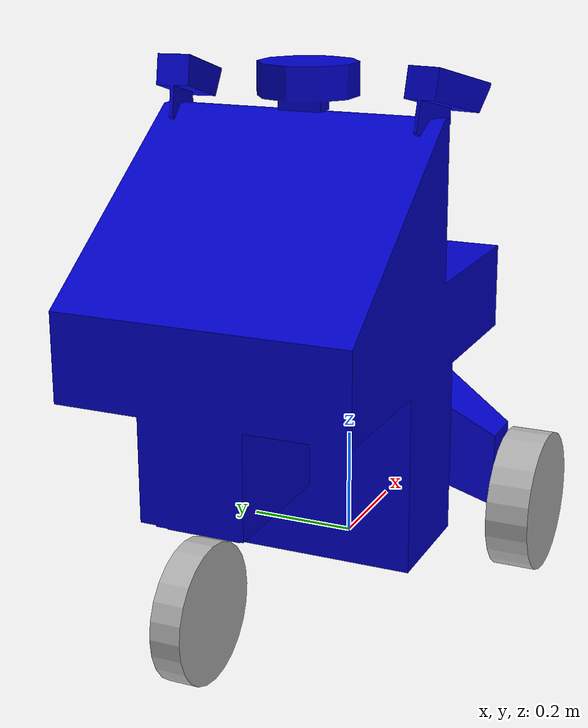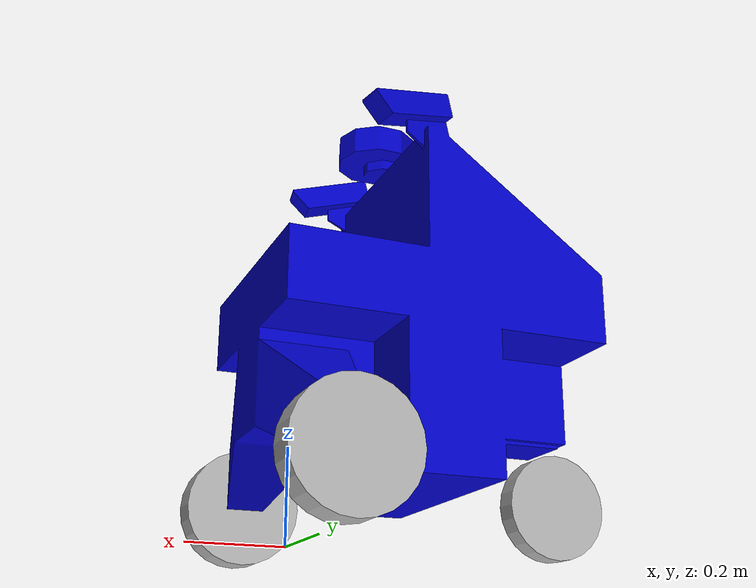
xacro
<?xml version="1.0"?>
<robot xmlns:body="http://playerstage.sourceforge.net/gazebo/xmlschema/#body"
       xmlns:controller="http://playerstage.sourceforge.net/gazebo/xmlschema/#controller"
       xmlns:geom="http://playerstage.sourceforge.net/gazebo/xmlschema/#geom"
       xmlns:interface="http://playerstage.sourceforge.net/gazebo/xmlschema/#interface"
       xmlns:joint="http://playerstage.sourceforge.net/gazebo/xmlschema/#slider"
       xmlns:sensor="http://playerstage.sourceforge.net/gazebo/xmlschema/#sensor"
       xmlns:xacro="http://ros.org/wiki/xacro"
       name="navi">
    <xacro:property name="EPS" value="0.000001"/>
    <xacro:property name="PI" value="3.1415926535897931"/>

    <xacro:property name="robot_weight" value="90.0"/>

    <!-- Wheels -->
    <xacro:property name="wheel_radius" value="0.127"/>
    <xacro:property name="wheel_thickness" value="0.0762"/>
    <xacro:property name="wheel_separation" value="0.70354"/>
    <xacro:property name="wheel_mass" value="3.175"/>
    <xacro:property name="wheel_torque" value="10"/>

    <xacro:property name="caster_pivot_offset" value="-0.53388 0  0.10833"/>
    <xacro:property name="caster_wheel_offset" value="-0.07620 0 -0.12103"/>
    <xacro:property name="caster_radius" value="0.1143"/>
    <xacro:property name="caster_thickness" value="0.0508"/>
    <xacro:property name="caster_separation" value="0.53388"/>
    <xacro:property name="caster_clearance" value="0.254"/>
    <xacro:property name="caster_mass" value="2.268"/>
    <xacro:property name="caster_offset_height" value="0.1524"/>
    <xacro:property name="caster_offset_axis" value="0.0889"/>

    <xacro:property name="gps_offset" value="-0.18941 0 0.76387"/>
    <xacro:property name="laser_offset" value="0.02927 0 0.46714"/>

    <xacro:macro name="weightless">
        <inertial>
            <mass value="${EPS}"/>
            <inertia ixx="${EPS}" ixy="0" ixz="0" iyy="${EPS}" iyz="0" izz="${EPS}"/>
        </inertial>
    </xacro:macro>

    <xacro:macro name="frame" params="parent child xyz rpy">
        <joint name="${child}_joint" type="fixed">
            <parent link="${parent}"/>
            <child link="${child}"/>
            <origin xyz="${xyz}" rpy="${rpy}"/>
        </joint>
        <link name="${child}">
            <xacro:weightless/>
        </link>
    </xacro:macro>

    <include filename="$(find navi_model)/urdf/materials.urdf.xacro"/>
    <include filename="$(find navi_model)/urdf/cameras.urdf.xacro"/>
    <include filename="$(find navi_model)/urdf/laser.urdf.xacro"/>
    <include filename="$(find navi_model)/urdf/chassis.urdf.xacro"/>
    <include filename="$(find navi_model)/urdf/gps.urdf.xacro"/>
    <include filename="$(find navi_model)/urdf/wheels.urdf.xacro"/>

    <xacro:chassis/>
    <xacro:wheel sign="+1" side="left"/>
    <xacro:wheel sign="-1" side="right"/>
    <xacro:caster/>

    <xacro:laser/>
    <xacro:gps/>
    <xacro:camera sign="+1" side="left"/>
    <xacro:camera sign="-1" side="right"/>
</robot>

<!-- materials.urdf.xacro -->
<robot>
    <material name="Red">
        <color rgba="0.8 0.0 0.0 1.0"/>
    </material>

    <material name="Green">
        <color rgba="0.0 0.8 0.0 1.0"/>
    </material>

    <material name="Blue">
        <color rgba="0.0 0.0 0.8 1.0"/>
    </material>

    <material name="Grey">
        <color rgba="0.7 0.7 0.7 1.0"/>
    </material>
</robot>

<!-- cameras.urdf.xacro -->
<robot xmlns:body="http://playerstage.sourceforge.net/gazebo/xmlschema/#body"
       xmlns:controller="http://playerstage.sourceforge.net/gazebo/xmlschema/#controller"
       xmlns:geom="http://playerstage.sourceforge.net/gazebo/xmlschema/#geom"
       xmlns:interface="http://playerstage.sourceforge.net/gazebo/xmlschema/#interface"
       xmlns:joint="http://playerstage.sourceforge.net/gazebo/xmlschema/#slider"
       xmlns:sensor="http://playerstage.sourceforge.net/gazebo/xmlschema/#sensor"
       xmlns:xacro="http://ros.org/wiki/xacro">
    <xacro:property name="camera_x" value="-0.09717"/>
    <xacro:property name="camera_y" value="0.24582"/>
    <xacro:property name="camera_z" value="0.75734"/>
    <xacro:property name="camera_roll"  value="0"/>
    <xacro:property name="camera_pitch" value="0.177150919"/>
    <xacro:property name="camera_yaw"   value="0.174532925"/>

    <xacro:property name="image_width"  value="640"/>
    <xacro:property name="image_height" value="480"/>
    <xacro:property name="camera_hfov" value="80"/>
    <xacro:property name="camera_fps" value="10"/>
    <xacro:property name="camera_focus" value="320"/>

    <xacro:macro name="camera" params="side sign">
        <xacro:frame parent="base_link" child="camera_${side}"
                     xyz="${camera_x} ${sign*camera_y} ${camera_z}"
                     rpy="${camera_roll} ${camera_pitch} ${sign*camera_yaw}"/>

        <xacro:frame parent="camera_${side}" child="camera_${side}_optical"
                     xyz="0 0 0" rpy="${-PI/2} 0 ${-PI/2}"/>

        <gazebo reference="camera_${side}">
          <sensor:camera name="camera_${side}_sensor">
            <imageSize>${image_width} ${image_height}</imageSize>
            <imageFormat>R8G8B8</imageFormat>
            <hfov>${camera_hfov}</hfov>
            <nearClip>0.1</nearClip>
            <farClip>100</farClip>
            <updateRate>25.0</updateRate>
            <controller:gazebo_ros_depth_camera name="camera_{$side}_controller" plugin="libgazebo_ros_depth_camera.so">
              <alwaysOn>true</alwaysOn>
              <updateRate>${camera_fps}</updateRate>
              <cameraName>camera_${side}</cameraName>
              <imageTopicName>/${side}/image_raw</imageTopicName>
              <cameraInfoTopicName>/${side}/camera_info</cameraInfoTopicName>
              <frameName>/camera_${side}_optical</frameName>
              <hackBaseline>0</hackBaseline>
              <CxPrime>${(image_width+1)/2}</CxPrime>
              <Cx>${(image_width+1)/2}</Cx>
              <Cy>${(image_height+1)/2}</Cy>
              <!-- image_width / (2*tan(hfov_radian /2)) -->
              <!-- 320 for wide and 772.55 for narrow stereo camera -->
              <focalLength>${camera_focus}</focalLength>
              <distortionK1>0.0</distortionK1>
              <distortionK2>0.0</distortionK2>
              <distortionK3>0.0</distortionK3>
              <distortionT1>0.0</distortionT1>
              <distortionT2>0.0</distortionT2>
              <interface:camera name="camera_${side}_iface" />
            </controller:gazebo_ros_depth_camera>
          </sensor:camera>
          <turnGravityOff>true</turnGravityOff>
          <material>Gazebo/Blue</material>
        </gazebo>
    </xacro:macro>
</robot>

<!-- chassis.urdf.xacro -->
<robot xmlns:body="http://playerstage.sourceforge.net/gazebo/xmlschema/#body"
       xmlns:controller="http://playerstage.sourceforge.net/gazebo/xmlschema/#controller"
       xmlns:geom="http://playerstage.sourceforge.net/gazebo/xmlschema/#geom"
       xmlns:interface="http://playerstage.sourceforge.net/gazebo/xmlschema/#interface"
       xmlns:joint="http://playerstage.sourceforge.net/gazebo/xmlschema/#slider"
       xmlns:sensor="http://playerstage.sourceforge.net/gazebo/xmlschema/#sensor"
       xmlns:xacro="http://ros.org/wiki/xacro">
    <xacro:macro name="chassis">
        <link name="base_footprint">
            <xacro:weightless/>
        </link>

        <joint name="base_link_joint" type="fixed">
            <parent link="base_footprint"/>
            <child link="base_link"/>
            <origin xyz="0 0 ${wheel_radius}"/>
        </joint>
        <link name="base_link">
            <inertial>
                <mass value="1.0"/>
                <inertia ixx="1.0" ixy="0.0"   ixz="0.0"
                                   iyy="100.0" iyz="0.0"
                                               izz="1.0" />
            </inertial>
            <visual>
                <origin xyz="0 0 ${3*wheel_radius}" rpy="0 0 0"/>
                <geometry>
                    <box size="${EPS} ${EPS} ${EPS}"/>
                </geometry>
            </visual>
            <collision>
                <origin xyz="0 0 ${3*wheel_radius}" rpy="0 0 0"/>
                <geometry>
                    <box size="${EPS} ${EPS} ${EPS}"/>
                </geometry>
            </collision>
        </link>

        <joint name="base_visual_joint" type="fixed">
            <parent link="base_link"/>
            <child link="base_visual"/>
            <origin xyz="0 0 0" rpy="${PI/2} 0 0"/>
        </joint>

        <link name="base_visual">
            <xacro:weightless/>
            <visual>
                <geometry>
                    <mesh filename="package://navi_model/meshes/frame.stl" scale="0.001 0.001 0.001"/>
                </geometry>
                <material name="Blue"/>
            </visual>
            <collision>
                <geometry>
                    <mesh filename="package://navi_model/meshes/frame.stl" scale="0.001 0.001 0.001"/>
                </geometry>
            </collision>
        </link>

        <gazebo reference="base_visual">
            <material>Gazebo/Blue</material>
        </gazebo>

        <gazebo>
            <controller:diffdrive_plugin name="differential_drive_controller" plugin="libdiffdrive_plugin.so">
                <alwaysOn>true</alwaysOn>
                <updateRate>50.0</updateRate>
                <torque>${wheel_torque}</torque>
                <leftJoint>wheel_left_joint</leftJoint>
                <rightJoint>wheel_right_joint</rightJoint>
                <wheelSeparation>${wheel_separation}</wheelSeparation>
                <wheelDiameter>${2*wheel_radius}</wheelDiameter>
                <robotNamespace>/</robotNamespace>
                <baseFrame>base_footprint</baseFrame>
                <odomFrame>odom</odomFrame>
                <twistTopicName>drive/cmd_vel</twistTopicName>
                <odomTopicName>drive/odom</odomTopicName>
                <alpha>0.05</alpha>
                <interface:position name="drive_iface"/>
            </controller:diffdrive_plugin>
        </gazebo>
    </xacro:macro>
</robot>

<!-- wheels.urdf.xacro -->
<robot xmlns:body="http://playerstage.sourceforge.net/gazebo/xmlschema/#body"
       xmlns:controller="http://playerstage.sourceforge.net/gazebo/xmlschema/#controller"
       xmlns:geom="http://playerstage.sourceforge.net/gazebo/xmlschema/#geom"
       xmlns:interface="http://playerstage.sourceforge.net/gazebo/xmlschema/#interface"
       xmlns:joint="http://playerstage.sourceforge.net/gazebo/xmlschema/#slider"
       xmlns:sensor="http://playerstage.sourceforge.net/gazebo/xmlschema/#sensor"
       xmlns:xacro="http://ros.org/wiki/xacro">
    <xacro:macro name="wheel" params="side sign">
        <joint name="wheel_${side}_joint" type="continuous">
            <parent link="base_link"/>
            <child link="wheel_${side}_link"/>
            <origin xyz="0 ${0.5*sign*wheel_separation} 0" rpy="${PI/2} 0 0"/>
            <axis xyz="0 0 1"/>
        </joint>
        <link name="wheel_${side}_link">
            <inertial>
                <mass value="${wheel_mass}"/>
                <inertia ixx="${wheel_mass*(3*wheel_radius*wheel_radius + wheel_thickness*wheel_thickness)}" ixy="0.0" ixz="0.0"
                         iyy="${wheel_mass*(3*wheel_radius*wheel_radius + wheel_thickness*wheel_thickness)}" iyz="0.0"
                         izz="${wheel_mass*wheel_radius*wheel_radius/2}"/>
            </inertial>
            <visual>
                <geometry>
                    <cylinder radius="${wheel_radius}" length="${wheel_thickness}"/>
                </geometry>
                <material name="Grey"/>
            </visual>
            <collision>
                <geometry>
                    <cylinder radius="${wheel_radius}" length="${wheel_thickness}"/>
                </geometry>
            </collision>
        </link>
        <gazebo reference="wheel_${side}_link">
            <material>Gazebo/Grey</material>
        </gazebo>
    </xacro:macro>

    <xacro:macro name="caster">
        <joint name="caster_pivot_joint" type="continuous">
            <parent link="base_link"/>
            <child link="caster_pivot_link"/>
            <origin xyz="${caster_pivot_offset}"/>
            <axis xyz="0 0 1"/>
        </joint>
        <link name="caster_pivot_link">
            <inertial>
                <mass value="${caster_mass}"/>
                <inertia ixx="${EPS}" ixy="0"      ixz="0"
                                      iyy="${EPS}" iyz="0"
                                                   izz="${EPS}"/>
            </inertial>
        </link>

        <joint name="caster_joint" type="fixed">
            <parent link="caster_pivot_link"/>
            <child link="caster_link"/>
            <origin xyz="${caster_wheel_offset}" rpy="${PI/2} 0 0"/>
            <axis xyz="0 0 1"/>
        </joint>
        <link name="caster_link">
            <inertial>
                <mass value="${caster_mass}"/>
                <inertia ixx="${caster_mass*(3*caster_radius*caster_radius + caster_thickness*caster_thickness)}" ixy="0.0" ixz="0.0"
                         iyy="${caster_mass*(3*caster_radius*caster_radius + caster_thickness*caster_thickness)}" iyz="0.0"
                         izz="${caster_mass*caster_radius*caster_radius/2}"/>
            </inertial>
            <visual>
                <inertia ixx="${wheel_mass*(3*wheel_radius*wheel_radius + wheel_thickness*wheel_thickness)}" ixy="0.0" ixz="0.0"
                         iyy="${wheel_mass*(3*wheel_radius*wheel_radius + wheel_thickness*wheel_thickness)}" iyz="0.0"
                         izz="${wheel_mass*wheel_radius*wheel_radius/2}"/>
                <geometry>
                    <cylinder radius="${caster_radius}" length="${caster_thickness}"/>
                </geometry>
                <material name="Grey"/>
            </visual>
            <collision>
                <geometry>
                    <cylinder radius="${caster_radius}" length="${caster_thickness}"/>
                </geometry>
            </collision>
        </link>
        <gazebo reference="caster_link">
            <material>Gazebo/Grey</material>
        </gazebo>
    </xacro:macro>
</robot>
